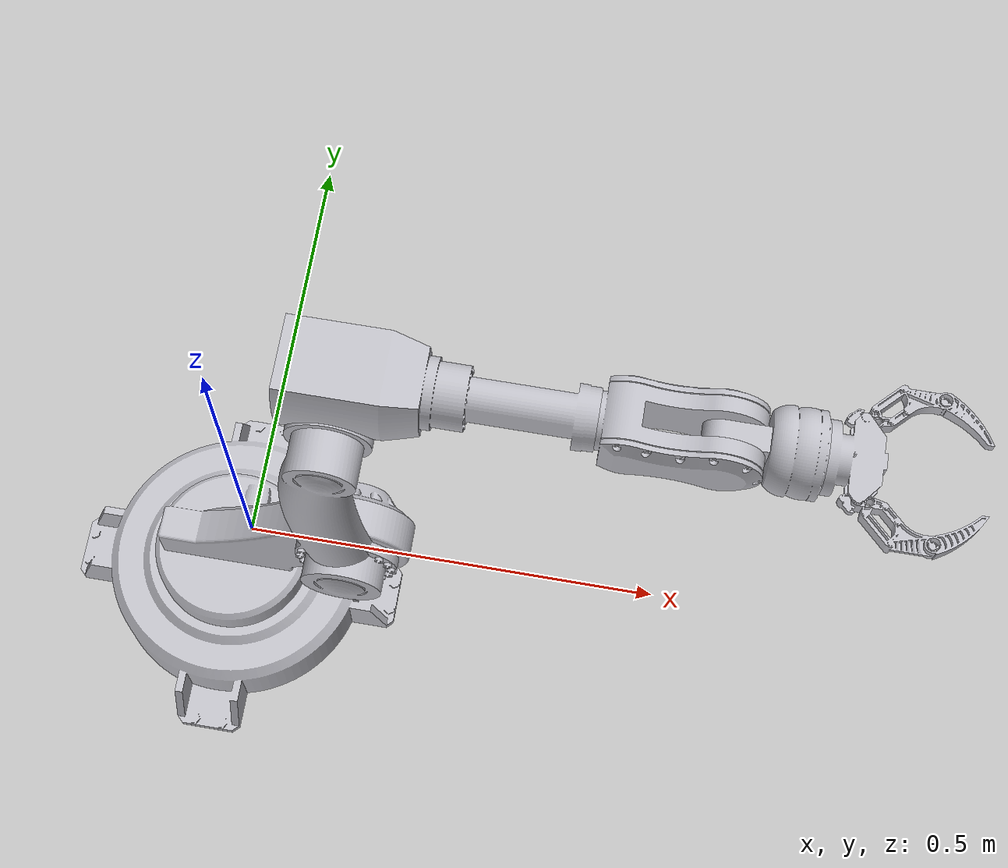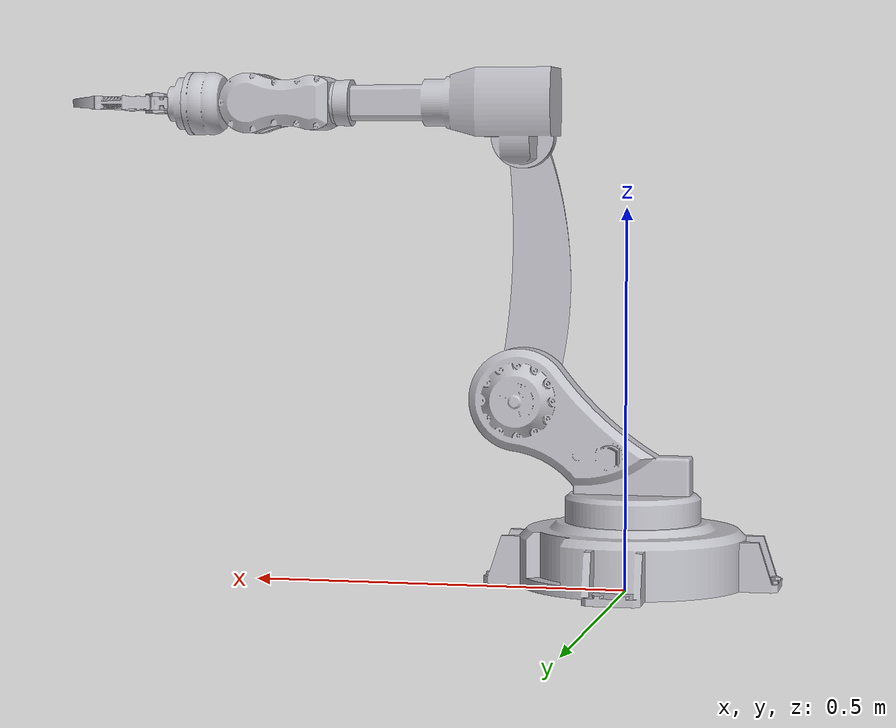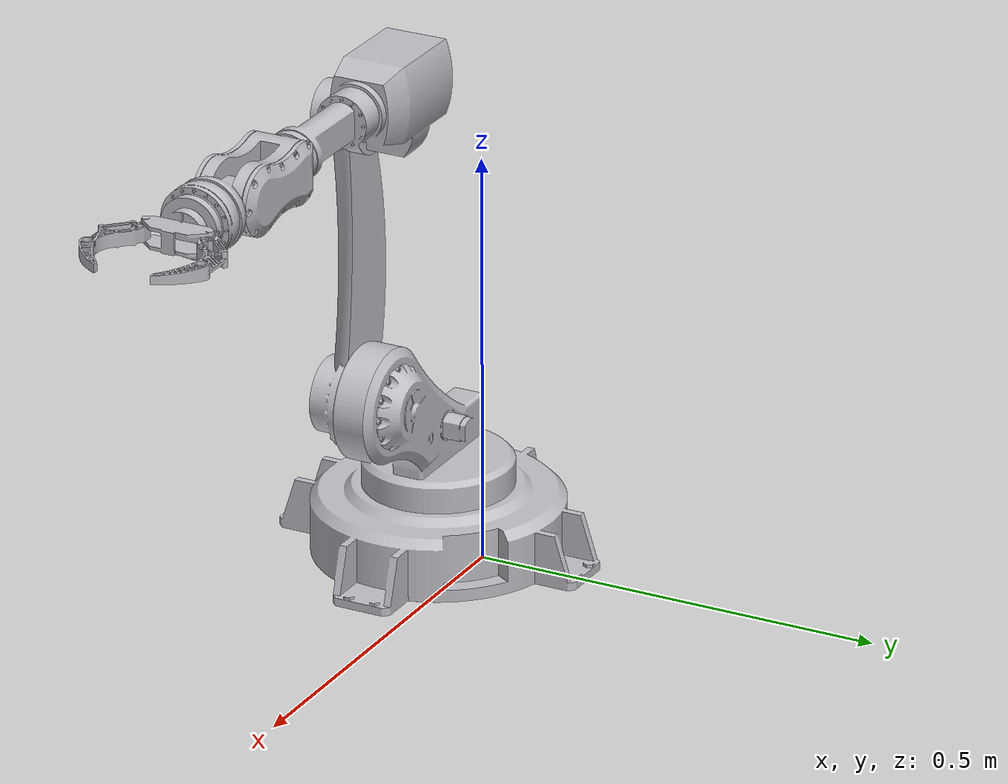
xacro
<?xml version="1.0" ?>
<robot name="robotic_arm" xmlns:xacro="http://www.ros.org/wiki/xacro">

<xacro:include filename="$(find robotic_arm_description)/urdf/materials.xacro" />
<xacro:include filename="$(find robotic_arm_description)/urdf/robotic_arm.trans" />
<xacro:include filename="$(find robotic_arm_description)/urdf/robotic_arm.gazebo" />

<link name="world"/>
<joint name="base_joint" type="fixed">
    <parent link="world"/>
    <child link="base_link"/>
    <origin rpy="0 0 ${radians(180)}" xyz="0.0 0.0 0.00"/>
</joint>

<link name="base_link">
  <inertial>
    <origin xyz="0.001959497114940088 0.05978383996103833 0.03890078890987177" rpy="0 0 0"/>
    <mass value="45.32032017365632"/>
    <inertia ixx="0.286642" iyy="0.286642" izz="0.523382" ixy="0.006277" iyz="-0.000324" ixz="-0.000324"/>
  </inertial>
  <visual>
    <origin xyz="0 0 0" rpy="0 0 0"/>
    <geometry>
      <mesh filename="package://robotic_arm_description/meshes/base_link.stl" scale="0.001 0.001 0.001"/>
    </geometry>
    <material name="silver"/>
  </visual>
  <collision>
    <origin xyz="0 0 0" rpy="0 0 0"/>
    <geometry>
      <mesh filename="package://robotic_arm_description/meshes/base_link.stl" scale="0.001 0.001 0.001"/>
    </geometry>
  </collision>
</link>

<link name="jaw1_1">
  <inertial>
    <origin xyz="-0.05909431116233142 -0.004006139353276157 0.08486906818603877" rpy="0 0 0"/>
    <mass value="18.786497279184598"/>
    <inertia ixx="0.097516" iyy="0.193949" izz="0.13248" ixy="-0.004893" iyz="0.004445" ixz="0.074275"/>
  </inertial>
  <visual>
    <origin xyz="-0.000534 -0.058358 -0.084193" rpy="0 0 0"/>
    <geometry>
      <mesh filename="package://robotic_arm_description/meshes/jaw1_1.stl" scale="0.001 0.001 0.001"/>
    </geometry>
    <material name="silver"/>
  </visual>
  <collision>
    <origin xyz="-0.000534 -0.058358 -0.084193" rpy="0 0 0"/>
    <geometry>
      <mesh filename="package://robotic_arm_description/meshes/jaw1_1.stl" scale="0.001 0.001 0.001"/>
    </geometry>
  </collision>
</link>

<link name="jaw2_1">
  <inertial>
    <origin xyz="0.009396645752536514 0.016346673293803182 0.14982483184809242" rpy="0 0 0"/>
    <mass value="8.268509087861013"/>
    <inertia ixx="0.148718" iyy="0.15176" izz="0.005454" ixy="0.000176" iyz="0.000132" ixz="-0.001868"/>
  </inertial>
  <visual>
    <origin xyz="0.149466 -0.078358 -0.244193" rpy="0 0 0"/>
    <geometry>
      <mesh filename="package://robotic_arm_description/meshes/jaw2_1.stl" scale="0.001 0.001 0.001"/>
    </geometry>
    <material name="silver"/>
  </visual>
  <collision>
    <origin xyz="0.149466 -0.078358 -0.244193" rpy="0 0 0"/>
    <geometry>
      <mesh filename="package://robotic_arm_description/meshes/jaw2_1.stl" scale="0.001 0.001 0.001"/>
    </geometry>
  </collision>
</link>

<link name="jaw3_1">
  <inertial>
    <origin xyz="-0.0440646053080877 -0.04638873406015811 0.0386121340726453" rpy="0 0 0"/>
    <mass value="11.356819633945126"/>
    <inertia ixx="0.015087" iyy="0.066371" izz="0.063354" ixy="-0.000806" iyz="0.000957" ixz="0.002822"/>
  </inertial>
  <visual>
    <origin xyz="0.149466 -0.078358 -0.594193" rpy="0 0 0"/>
    <geometry>
      <mesh filename="package://robotic_arm_description/meshes/jaw3_1.stl" scale="0.001 0.001 0.001"/>
    </geometry>
    <material name="silver"/>
  </visual>
  <collision>
    <origin xyz="0.149466 -0.078358 -0.594193" rpy="0 0 0"/>
    <geometry>
      <mesh filename="package://robotic_arm_description/meshes/jaw3_1.stl" scale="0.001 0.001 0.001"/>
    </geometry>
  </collision>
</link>

<link name="jaw4_1">
  <inertial>
    <origin xyz="-0.06936002908715583 3.497152024183048e-07 -3.3635927376707286e-09" rpy="0 0 0"/>
    <mass value="4.590924229482726"/>
    <inertia ixx="0.004483" iyy="0.010937" izz="0.012117" ixy="0.0" iyz="0.0" ixz="-0.0"/>
  </inertial>
  <visual>
    <origin xyz="0.395729 -0.030358 -0.638445" rpy="0 0 0"/>
    <geometry>
      <mesh filename="package://robotic_arm_description/meshes/jaw4_1.stl" scale="0.001 0.001 0.001"/>
    </geometry>
    <material name="silver"/>
  </visual>
  <collision>
    <origin xyz="0.395729 -0.030358 -0.638445" rpy="0 0 0"/>
    <geometry>
      <mesh filename="package://robotic_arm_description/meshes/jaw4_1.stl" scale="0.001 0.001 0.001"/>
    </geometry>
  </collision>
</link>

<link name="jaw5_1">
  <inertial>
    <origin xyz="-0.05742274909820899 -0.012074329975050303 -1.3415845545594607e-08" rpy="0 0 0"/>
    <mass value="2.620268703215457"/>
    <inertia ixx="0.00186" iyy="0.002813" izz="0.002794" ixy="8e-06" iyz="0.0" ixz="-0.0"/>
  </inertial>
  <visual>
    <origin xyz="0.510729 -0.042858 -0.638445" rpy="0 0 0"/>
    <geometry>
      <mesh filename="package://robotic_arm_description/meshes/jaw5_1.stl" scale="0.001 0.001 0.001"/>
    </geometry>
    <material name="silver"/>
  </visual>
  <collision>
    <origin xyz="0.510729 -0.042858 -0.638445" rpy="0 0 0"/>
    <geometry>
      <mesh filename="package://robotic_arm_description/meshes/jaw5_1.stl" scale="0.001 0.001 0.001"/>
    </geometry>
  </collision>
</link>

<link name="jaw6_1">
  <inertial>
    <origin xyz="-0.01670255088998085 3.481973394128812e-07 1.54420520739329e-05" rpy="0 0 0"/>
    <mass value="0.6134273281691381"/>
    <inertia ixx="0.000336" iyy="0.000257" izz="0.000324" ixy="0.0" iyz="0.0" ixz="0.0"/>
  </inertial>
  <visual>
    <origin xyz="0.603729 -0.030858 -0.638445" rpy="0 0 0"/>
    <geometry>
      <mesh filename="package://robotic_arm_description/meshes/jaw6_1.stl" scale="0.001 0.001 0.001"/>
    </geometry>
    <material name="silver"/>
  </visual>
  <collision>
    <origin xyz="0.603729 -0.030858 -0.638445" rpy="0 0 0"/>
    <geometry>
      <mesh filename="package://robotic_arm_description/meshes/jaw6_1.stl" scale="0.001 0.001 0.001"/>
    </geometry>
  </collision>
</link>

<link name="jaw7.1_1">
  <inertial>
    <origin xyz="-0.04724180067561057 0.017982710949063882 -0.008596920840052924" rpy="0 0 0"/>
    <mass value="0.17039946788074226"/>
    <inertia ixx="2.9e-05" iyy="0.000196" izz="0.000219" ixy="2.1e-05" iyz="-0.0" ixz="0.0"/>
  </inertial>
  <visual>
    <origin xyz="0.636621 -0.070168 -0.647445" rpy="0 0 0"/>
    <geometry>
      <mesh filename="package://robotic_arm_description/meshes/jaw7.1_1.stl" scale="0.001 0.001 0.001"/>
    </geometry>
    <material name="silver"/>
  </visual>
  <collision>
    <origin xyz="0.636621 -0.070168 -0.647445" rpy="0 0 0"/>
    <geometry>
      <mesh filename="package://robotic_arm_description/meshes/jaw7.1_1.stl" scale="0.001 0.001 0.001"/>
    </geometry>
  </collision>
</link>

<link name="jaw7.2_1">
  <inertial>
    <origin xyz="-0.04724180067561157 -0.01798301455438199 -0.008596920840050148" rpy="0 0 0"/>
    <mass value="0.17039946788074223"/>
    <inertia ixx="2.9e-05" iyy="0.000196" izz="0.000219" ixy="-2.1e-05" iyz="0.0" ixz="0.0"/>
  </inertial>
  <visual>
    <origin xyz="0.636621 0.008451 -0.647445" rpy="0 0 0"/>
    <geometry>
      <mesh filename="package://robotic_arm_description/meshes/jaw7.2_1.stl" scale="0.001 0.001 0.001"/>
    </geometry>
    <material name="silver"/>
  </visual>
  <collision>
    <origin xyz="0.636621 0.008451 -0.647445" rpy="0 0 0"/>
    <geometry>
      <mesh filename="package://robotic_arm_description/meshes/jaw7.2_1.stl" scale="0.001 0.001 0.001"/>
    </geometry>
  </collision>
</link>

<joint name="Revolute_12" type="revolute">
  <origin xyz="0.000534 0.058358 0.084193" rpy="0 0 0"/>
  <parent link="base_link"/>
  <child link="jaw1_1"/>
  <axis xyz="-0.0 -0.0 -1.0"/>
  <limit upper="6.283185" lower="0.0" effort="100" velocity="100"/>
</joint>

<joint name="Revolute_13" type="revolute">
  <origin xyz="-0.15 0.02 0.16" rpy="0 0 0"/>
  <parent link="jaw1_1"/>
  <child link="jaw2_1"/>
  <axis xyz="-0.0 -1.0 -0.0"/>
  <limit upper="1.570796" lower="-1.047198" effort="100" velocity="100"/>
</joint>

<joint name="Revolute_14" type="revolute">
  <origin xyz="0.0 0.0 0.35" rpy="0 0 0"/>
  <parent link="jaw2_1"/>
  <child link="jaw3_1"/>
  <axis xyz="0.0 1.0 0.0"/>
  <limit upper="3.141593" lower="-0.523599" effort="100" velocity="100"/>
</joint>

<joint name="Revolute_15" type="revolute">
  <origin xyz="-0.246263 -0.048 0.044252" rpy="0 0 0"/>
  <parent link="jaw3_1"/>
  <child link="jaw4_1"/>
  <axis xyz="1.0 -0.0 0.0"/>
  <limit upper="3.141593" lower="0.0" effort="100" velocity="100"/>
</joint>

<joint name="Revolute_16" type="revolute">
  <origin xyz="-0.115 0.0125 0.0" rpy="0 0 0"/>
  <parent link="jaw4_1"/>
  <child link="jaw5_1"/>
  <axis xyz="0.0 1.0 0.0"/>
  <limit upper="1.745329" lower="-1.745329" effort="100" velocity="100"/>
</joint>

<joint name="Revolute_17" type="revolute">
  <origin xyz="-0.093 -0.012 0.0" rpy="0 0 0"/>
  <parent link="jaw5_1"/>
  <child link="jaw6_1"/>
  <axis xyz="1.0 0.0 0.0"/>
  <limit upper="3.141593" lower="0.0" effort="100" velocity="100"/>
</joint>

<joint name="Revolute_22" type="revolute">
  <origin xyz="-0.032892 0.03931 0.009" rpy="0 0 0"/>
  <parent link="jaw6_1"/>
  <child link="jaw7.1_1"/>
  <axis xyz="-0.0 0.0 1.0"/>
  <limit upper="0.292343" lower="-1.570796" effort="100" velocity="100"/>
</joint>

<joint name="Revolute_24" type="revolute">
  <origin xyz="-0.032892 -0.039309 0.009" rpy="0 0 0"/>
  <parent link="jaw6_1"/>
  <child link="jaw7.2_1"/>
  <axis xyz="-0.0 0.0 1.0"/>
  <limit lower="-0.292343"  upper="1.570796"  effort="100" velocity="100"/>
</joint>

</robot>

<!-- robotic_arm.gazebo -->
<robot name="robotic_arm" xmlns:xacro="http://www.ros.org/wiki/xacro" >

<xacro:property name="body_color" value="Gazebo/Silver" />

<gazebo>
  <plugin name="control" filename="libgazebo_ros_control.so"/>
</gazebo>
<gazebo reference="base_link">
  <material>${body_color}</material>
  <mu1>0.2</mu1>
  <mu2>0.2</mu2>
  <selfCollide>true</selfCollide>
  <gravity>true</gravity>
</gazebo>

<gazebo reference="jaw1_1">
  <material>${body_color}</material>
  <mu1>0.2</mu1>
  <mu2>0.2</mu2>
  <selfCollide>true</selfCollide>
</gazebo>

<gazebo reference="jaw2_1">
  <material>${body_color}</material>
  <mu1>0.2</mu1>
  <mu2>0.2</mu2>
  <selfCollide>true</selfCollide>
</gazebo>

<gazebo reference="jaw3_1">
  <material>${body_color}</material>
  <mu1>0.2</mu1>
  <mu2>0.2</mu2>
  <selfCollide>true</selfCollide>
</gazebo>

<gazebo reference="jaw4_1">
  <material>${body_color}</material>
  <mu1>0.2</mu1>
  <mu2>0.2</mu2>
  <selfCollide>true</selfCollide>
</gazebo>

<gazebo reference="jaw5_1">
  <material>${body_color}</material>
  <mu1>0.2</mu1>
  <mu2>0.2</mu2>
  <selfCollide>true</selfCollide>
</gazebo>

<gazebo reference="jaw6_1">
  <material>${body_color}</material>
  <mu1>0.2</mu1>
  <mu2>0.2</mu2>
  <selfCollide>true</selfCollide>
</gazebo>

<gazebo reference="jaw7.1_1">
  <material>${body_color}</material>
  <mu1>0.2</mu1>
  <mu2>0.2</mu2>
  <selfCollide>true</selfCollide>
</gazebo>

<gazebo reference="jaw7.2_1">
  <material>${body_color}</material>
  <mu1>0.2</mu1>
  <mu2>0.2</mu2>
  <selfCollide>true</selfCollide>
</gazebo>

</robot>
